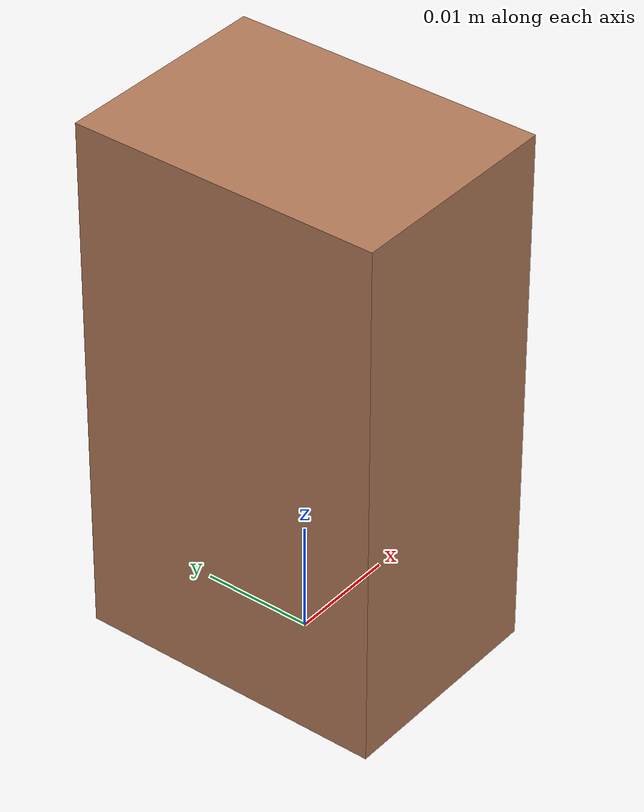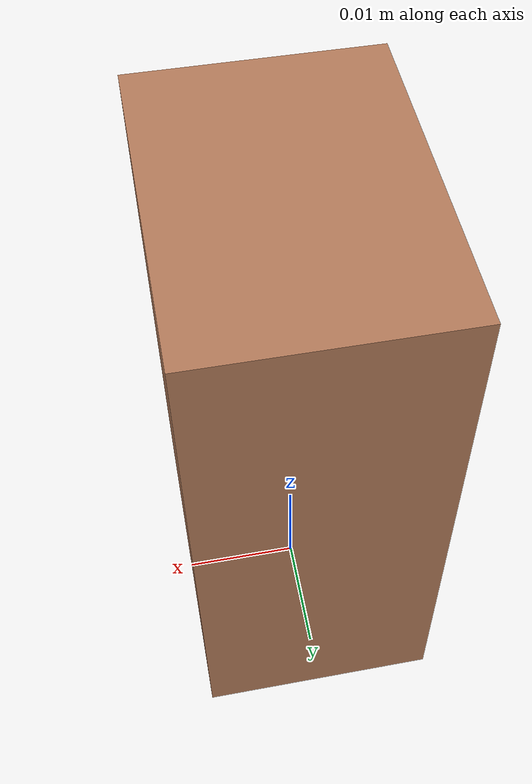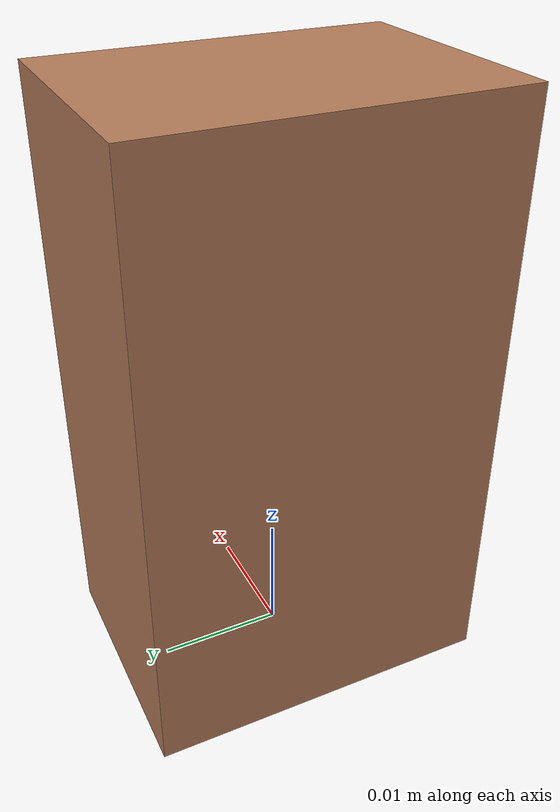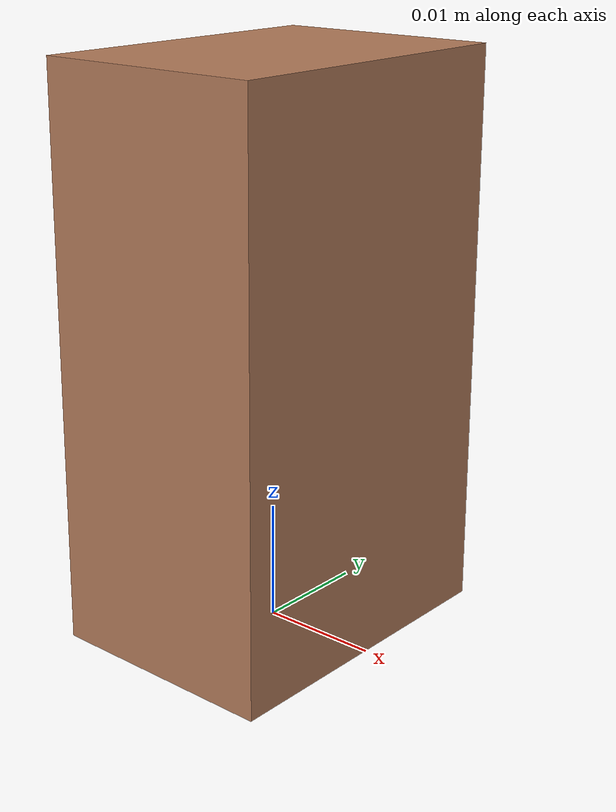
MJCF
<mujoco model="box_tall">
  <worldbody>
    <body name="object" pos="0 0 0.024">
      <freejoint name="object_root" />
      <geom
        name="box_tall_geom"
        type="box"
        size="0.010 0.014 0.024"
        mass="0.06"
        rgba="0.70 0.48 0.35 1"
        friction="0.9 0.03 0.01"
        priority="1"
      />
    </body>
  </worldbody>
</mujoco>
